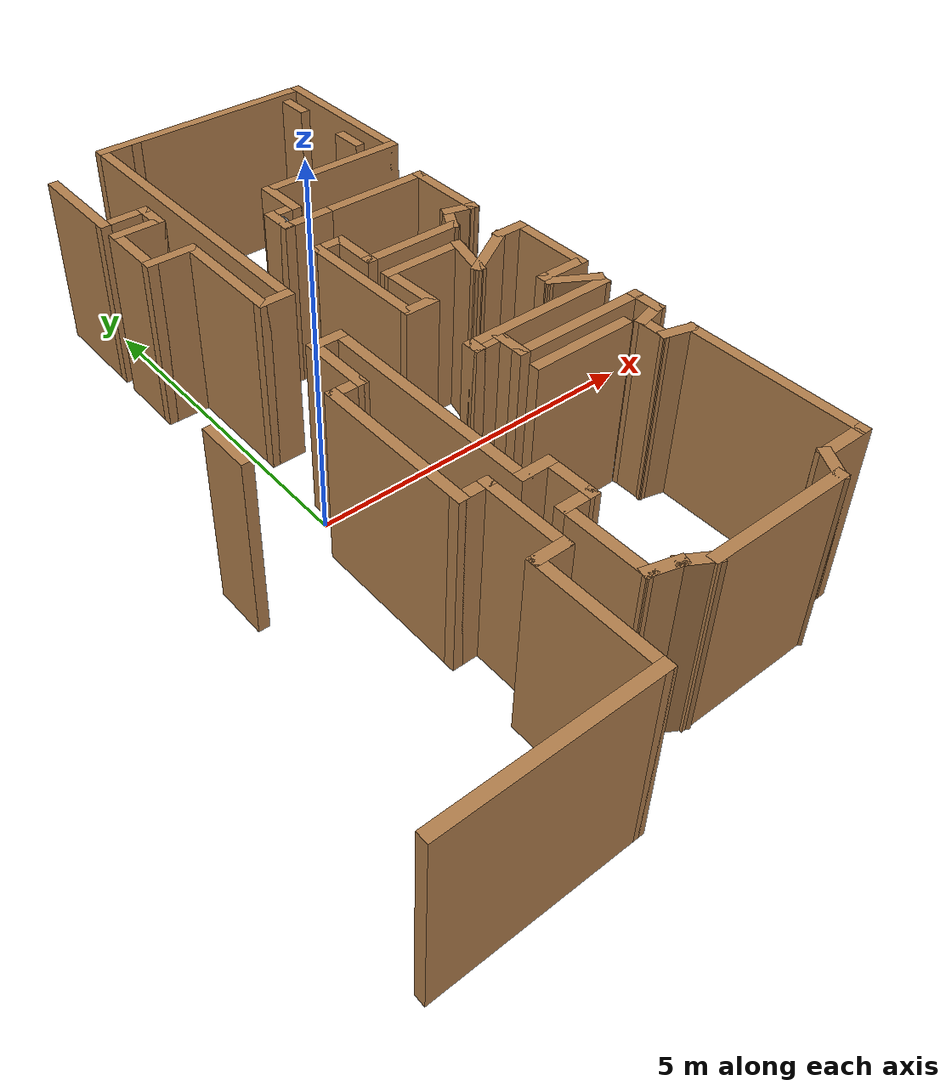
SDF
<sdf version="1.6">
 <model name="map_30">
  <pose>-2.27007 0.308618 0 0 -0 0</pose>
  <link name="Wall_100">
   <collision name="Wall_100_Collision">
    <geometry><box><size>0.25 0.15 2.5</size></box></geometry>
    <pose>0 0 1.25 0 -0 0</pose>
   </collision>
   <visual name="Wall_100_Visual">
    <pose>0 0 1.25 0 -0 0</pose>
    <geometry><box><size>0.25 0.15 2.5</size></box></geometry>
    <material>
     <script><uri>file://media/materials/scripts/gazebo.material</uri><name>Gazebo/Wood</name></script>
     <ambient>1 1 1 1</ambient>
    </material>
    <meta><layer>0</layer></meta>
   </visual>
   <pose>3.86655 -1.14749 0 0 -0 1.5708</pose>
  </link>
  <link name="Wall_101">
   <collision name="Wall_101_Collision">
    <geometry><box><size>2.25 0.15 2.5</size></box></geometry>
    <pose>0 0 1.25 0 -0 0</pose>
   </collision>
   <visual name="Wall_101_Visual">
    <pose>0 0 1.25 0 -0 0</pose>
    <geometry><box><size>2.25 0.15 2.5</size></box></geometry>
    <material>
     <script><uri>file://media/materials/scripts/gazebo.material</uri><name>Gazebo/Wood</name></script>
     <ambient>1 1 1 1</ambient>
    </material>
    <meta><layer>0</layer></meta>
   </visual>
   <pose>4.91655 -1.09749 0 0 -0 0</pose>
  </link>
  <link name="Wall_102">
   <collision name="Wall_102_Collision">
    <geometry><box><size>0.25 0.15 2.5</size></box></geometry>
    <pose>0 0 1.25 0 -0 0</pose>
   </collision>
   <visual name="Wall_102_Visual">
    <pose>0 0 1.25 0 -0 0</pose>
    <geometry><box><size>0.25 0.15 2.5</size></box></geometry>
    <material>
     <script><uri>file://media/materials/scripts/gazebo.material</uri><name>Gazebo/Wood</name></script>
     <ambient>1 1 1 1</ambient>
    </material>
    <meta><layer>0</layer></meta>
   </visual>
   <pose>5.97949 -1.04919 0 0 -0 1.309</pose>
  </link>
  <link name="Wall_103">
   <collision name="Wall_103_Collision">
    <geometry><box><size>0.75 0.15 2.5</size></box></geometry>
    <pose>0 0 1.25 0 -0 0</pose>
   </collision>
   <visual name="Wall_103_Visual">
    <pose>0 0 1.25 0 -0 0</pose>
    <geometry><box><size>0.75 0.15 2.5</size></box></geometry>
    <material>
     <script><uri>file://media/materials/scripts/gazebo.material</uri><name>Gazebo/Wood</name></script>
     <ambient>1 1 1 1</ambient>
    </material>
    <meta><layer>0</layer></meta>
   </visual>
   <pose>5.73262 -0.850895 0 0 -0 2.61799</pose>
  </link>
  <link name="Wall_104">
   <collision name="Wall_104_Collision">
    <geometry><box><size>0.25 0.15 2.5</size></box></geometry>
    <pose>0 0 1.25 0 -0 0</pose>
   </collision>
   <visual name="Wall_104_Visual">
    <pose>0 0 1.25 0 -0 0</pose>
    <geometry><box><size>0.25 0.15 2.5</size></box></geometry>
    <material>
     <script><uri>file://media/materials/scripts/gazebo.material</uri><name>Gazebo/Wood</name></script>
     <ambient>1 1 1 1</ambient>
    </material>
    <meta><layer>0</layer></meta>
   </visual>
   <pose>5.47282 -0.650895 0 0 -0 1.5708</pose>
  </link>
  <link name="Wall_105">
   <collision name="Wall_105_Collision">
    <geometry><box><size>0.75 0.15 2.5</size></box></geometry>
    <pose>0 0 1.25 0 -0 0</pose>
   </collision>
   <visual name="Wall_105_Visual">
    <pose>0 0 1.25 0 -0 0</pose>
    <geometry><box><size>0.75 0.15 2.5</size></box></geometry>
    <material>
     <script><uri>file://media/materials/scripts/gazebo.material</uri><name>Gazebo/Wood</name></script>
     <ambient>1 1 1 1</ambient>
    </material>
    <meta><layer>0</layer></meta>
   </visual>
   <pose>5.77282 -0.600895 0 0 -0 0</pose>
  </link>
  <link name="Wall_106">
   <collision name="Wall_106_Collision">
    <geometry><box><size>1.25 0.15 2.5</size></box></geometry>
    <pose>0 0 1.25 0 -0 0</pose>
   </collision>
   <visual name="Wall_106_Visual">
    <pose>0 0 1.25 0 -0 0</pose>
    <geometry><box><size>1.25 0.15 2.5</size></box></geometry>
    <material>
     <script><uri>file://media/materials/scripts/gazebo.material</uri><name>Gazebo/Wood</name></script>
     <ambient>1 1 1 1</ambient>
    </material>
    <meta><layer>0</layer></meta>
   </visual>
   <pose>6.07282 -0.050895 0 0 -0 1.5708</pose>
  </link>
  <link name="Wall_107">
   <collision name="Wall_107_Collision">
    <geometry><box><size>0.5 0.15 2.5</size></box></geometry>
    <pose>0 0 1.25 0 -0 0</pose>
   </collision>
   <visual name="Wall_107_Visual">
    <pose>0 0 1.25 0 -0 0</pose>
    <geometry><box><size>0.5 0.15 2.5</size></box></geometry>
    <material>
     <script><uri>file://media/materials/scripts/gazebo.material</uri><name>Gazebo/Wood</name></script>
     <ambient>1 1 1 1</ambient>
    </material>
    <meta><layer>0</layer></meta>
   </visual>
   <pose>5.89782 0.499105 0 0 -0 3.14159</pose>
  </link>
  <link name="Wall_108">
   <collision name="Wall_108_Collision">
    <geometry><box><size>1 0.15 2.5</size></box></geometry>
    <pose>0 0 1.25 0 -0 0</pose>
   </collision>
   <visual name="Wall_108_Visual">
    <pose>0 0 1.25 0 -0 0</pose>
    <geometry><box><size>1 0.15 2.5</size></box></geometry>
    <material>
     <script><uri>file://media/materials/scripts/gazebo.material</uri><name>Gazebo/Wood</name></script>
     <ambient>1 1 1 1</ambient>
    </material>
    <meta><layer>0</layer></meta>
   </visual>
   <pose>5.35475 0.286605 0 0 -0 -2.61799</pose>
  </link>
  <link name="Wall_109">
   <collision name="Wall_109_Collision">
    <geometry><box><size>0.75 0.15 2.5</size></box></geometry>
    <pose>0 0 1.25 0 -0 0</pose>
   </collision>
   <visual name="Wall_109_Visual">
    <pose>0 0 1.25 0 -0 0</pose>
    <geometry><box><size>0.75 0.15 2.5</size></box></geometry>
    <material>
     <script><uri>file://media/materials/scripts/gazebo.material</uri><name>Gazebo/Wood</name></script>
     <ambient>1 1 1 1</ambient>
    </material>
    <meta><layer>0</layer></meta>
   </visual>
   <pose>5.06434 0.363883 0 0 -0 1.309</pose>
  </link>
  <link name="Wall_112">
   <collision name="Wall_112_Collision">
    <geometry><box><size>1.25 0.15 2.5</size></box></geometry>
    <pose>0 0 1.25 0 -0 0</pose>
   </collision>
   <visual name="Wall_112_Visual">
    <pose>0 0 1.25 0 -0 0</pose>
    <geometry><box><size>1.25 0.15 2.5</size></box></geometry>
    <material>
     <script><uri>file://media/materials/scripts/gazebo.material</uri><name>Gazebo/Wood</name></script>
     <ambient>1 1 1 1</ambient>
    </material>
    <meta><layer>0</layer></meta>
   </visual>
   <pose>4.59199 0.653661 0 0 -0 3.14159</pose>
  </link>
  <link name="Wall_113">
   <collision name="Wall_113_Collision">
    <geometry><box><size>0.884711 0.15 2.5</size></box></geometry>
    <pose>0 0 1.25 0 -0 0</pose>
   </collision>
   <visual name="Wall_113_Visual">
    <pose>0 0 1.25 0 -0 0</pose>
    <geometry><box><size>0.884711 0.15 2.5</size></box></geometry>
    <material>
     <script><uri>file://media/materials/scripts/gazebo.material</uri><name>Gazebo/Wood</name></script>
     <ambient>1 1 1 1</ambient>
    </material>
    <meta><layer>0</layer></meta>
   </visual>
   <pose>4.05355 0.286487 0 0 -0 -1.53931</pose>
  </link>
  <link name="Wall_116">
   <collision name="Wall_116_Collision">
    <geometry><box><size>0.5 0.15 2.5</size></box></geometry>
    <pose>0 0 1.25 0 -0 0</pose>
   </collision>
   <visual name="Wall_116_Visual">
    <pose>0 0 1.25 0 -0 0</pose>
    <geometry><box><size>0.5 0.15 2.5</size></box></geometry>
    <material>
     <script><uri>file://media/materials/scripts/gazebo.material</uri><name>Gazebo/Wood</name></script>
     <ambient>1 1 1 1</ambient>
    </material>
    <meta><layer>0</layer></meta>
   </visual>
   <pose>3.89012 -0.126947 0 0 -0 3.14159</pose>
  </link>
  <link name="Wall_117">
   <collision name="Wall_117_Collision">
    <geometry><box><size>1.8845 0.15 2.5</size></box></geometry>
    <pose>0 0 1.25 0 -0 0</pose>
   </collision>
   <visual name="Wall_117_Visual">
    <pose>0 0 1.25 0 -0 0</pose>
    <geometry><box><size>1.8845 0.15 2.5</size></box></geometry>
    <material>
     <script><uri>file://media/materials/scripts/gazebo.material</uri><name>Gazebo/Wood</name></script>
     <ambient>1 1 1 1</ambient>
    </material>
    <meta><layer>0</layer></meta>
   </visual>
   <pose>3.70355 0.786487 0 0 -0 1.58413</pose>
  </link>
  <link name="Wall_118">
   <collision name="Wall_118_Collision">
    <geometry><box><size>0.5 0.15 2.5</size></box></geometry>
    <pose>0 0 1.25 0 -0 0</pose>
   </collision>
   <visual name="Wall_118_Visual">
    <pose>0 0 1.25 0 -0 0</pose>
    <geometry><box><size>0.5 0.15 2.5</size></box></geometry>
    <material>
     <script><uri>file://media/materials/scripts/gazebo.material</uri><name>Gazebo/Wood</name></script>
     <ambient>1 1 1 1</ambient>
    </material>
    <meta><layer>0</layer></meta>
   </visual>
   <pose>3.86699 1.65366 0 0 -0 0</pose>
  </link>
  <link name="Wall_121">
   <collision name="Wall_121_Collision">
    <geometry><box><size>0.75 0.15 2.5</size></box></geometry>
    <pose>0 0 1.25 0 -0 0</pose>
   </collision>
   <visual name="Wall_121_Visual">
    <pose>0 0 1.25 0 -0 0</pose>
    <geometry><box><size>0.75 0.15 2.5</size></box></geometry>
    <material>
     <script><uri>file://media/materials/scripts/gazebo.material</uri><name>Gazebo/Wood</name></script>
     <ambient>1 1 1 1</ambient>
    </material>
    <meta><layer>0</layer></meta>
   </visual>
   <pose>4.04199 1.35366 0 0 -0 -1.5708</pose>
  </link>
  <link name="Wall_122">
   <collision name="Wall_122_Collision">
    <geometry><box><size>1.5 0.15 2.5</size></box></geometry>
    <pose>0 0 1.25 0 -0 0</pose>
   </collision>
   <visual name="Wall_122_Visual">
    <pose>0 0 1.25 0 -0 0</pose>
    <geometry><box><size>1.5 0.15 2.5</size></box></geometry>
    <material>
     <script><uri>file://media/materials/scripts/gazebo.material</uri><name>Gazebo/Wood</name></script>
     <ambient>1 1 1 1</ambient>
    </material>
    <meta><layer>0</layer></meta>
   </visual>
   <pose>4.71699 1.05366 0 0 -0 0</pose>
  </link>
  <link name="Wall_123">
   <collision name="Wall_123_Collision">
    <geometry><box><size>0.5 0.15 2.5</size></box></geometry>
    <pose>0 0 1.25 0 -0 0</pose>
   </collision>
   <visual name="Wall_123_Visual">
    <pose>0 0 1.25 0 -0 0</pose>
    <geometry><box><size>0.5 0.15 2.5</size></box></geometry>
    <material>
     <script><uri>file://media/materials/scripts/gazebo.material</uri><name>Gazebo/Wood</name></script>
     <ambient>1 1 1 1</ambient>
    </material>
    <meta><layer>0</layer></meta>
   </visual>
   <pose>5.47949 1.20521 0 0 -0 1.0472</pose>
  </link>
  <link name="Wall_124">
   <collision name="Wall_124_Collision">
    <geometry><box><size>0.5 0.15 2.5</size></box></geometry>
    <pose>0 0 1.25 0 -0 0</pose>
   </collision>
   <visual name="Wall_124_Visual">
    <pose>0 0 1.25 0 -0 0</pose>
    <geometry><box><size>0.5 0.15 2.5</size></box></geometry>
    <material>
     <script><uri>file://media/materials/scripts/gazebo.material</uri><name>Gazebo/Wood</name></script>
     <ambient>1 1 1 1</ambient>
    </material>
    <meta><layer>0</layer></meta>
   </visual>
   <pose>5.73602 1.31148 0 0 -0 -0.261799</pose>
  </link>
  <link name="Wall_125">
   <collision name="Wall_125_Collision">
    <geometry><box><size>1.25 0.15 2.5</size></box></geometry>
    <pose>0 0 1.25 0 -0 0</pose>
   </collision>
   <visual name="Wall_125_Visual">
    <pose>0 0 1.25 0 -0 0</pose>
    <geometry><box><size>1.25 0.15 2.5</size></box></geometry>
    <material>
     <script><uri>file://media/materials/scripts/gazebo.material</uri><name>Gazebo/Wood</name></script>
     <ambient>1 1 1 1</ambient>
    </material>
    <meta><layer>0</layer></meta>
   </visual>
   <pose>5.90506 1.81618 0 0 -0 1.5708</pose>
  </link>
  <link name="Wall_126">
   <collision name="Wall_126_Collision">
    <geometry><box><size>1.75 0.15 2.5</size></box></geometry>
    <pose>0 0 1.25 0 -0 0</pose>
   </collision>
   <visual name="Wall_126_Visual">
    <pose>0 0 1.25 0 -0 0</pose>
    <geometry><box><size>1.75 0.15 2.5</size></box></geometry>
    <material>
     <script><uri>file://media/materials/scripts/gazebo.material</uri><name>Gazebo/Wood</name></script>
     <ambient>1 1 1 1</ambient>
    </material>
    <meta><layer>0</layer></meta>
   </visual>
   <pose>5.10506 2.36618 0 0 -0 3.14159</pose>
  </link>
  <link name="Wall_128">
   <collision name="Wall_128_Collision">
    <geometry><box><size>0.15 0.15 2.5</size></box></geometry>
    <pose>0 0 1.25 0 -0 0</pose>
   </collision>
   <visual name="Wall_128_Visual">
    <pose>0 0 1.25 0 -0 0</pose>
    <geometry><box><size>0.15 0.15 2.5</size></box></geometry>
    <material>
     <script><uri>file://media/materials/scripts/gazebo.material</uri><name>Gazebo/Grey</name></script>
     <ambient>1 1 1 1</ambient>
    </material>
    <meta><layer>0</layer></meta>
   </visual>
   <pose>3.7255 2.52147 0 0 -0 0</pose>
  </link>
  <link name="Wall_130">
   <collision name="Wall_130_Collision">
    <geometry><box><size>0.75 0.15 2.5</size></box></geometry>
    <pose>0 0 1.25 0 -0 0</pose>
   </collision>
   <visual name="Wall_130_Visual">
    <pose>0 0 1.25 0 -0 0</pose>
    <geometry><box><size>0.75 0.15 2.5</size></box></geometry>
    <material>
     <script><uri>file://media/materials/scripts/gazebo.material</uri><name>Gazebo/Wood</name></script>
     <ambient>1 1 1 1</ambient>
    </material>
    <meta><layer>0</layer></meta>
   </visual>
   <pose>4.00506 2.36618 0 0 -0 3.14159</pose>
  </link>
  <link name="Wall_131">
   <collision name="Wall_131_Collision">
    <geometry><box><size>0.5 0.15 2.5</size></box></geometry>
    <pose>0 0 1.25 0 -0 0</pose>
   </collision>
   <visual name="Wall_131_Visual">
    <pose>0 0 1.25 0 -0 0</pose>
    <geometry><box><size>0.5 0.15 2.5</size></box></geometry>
    <material>
     <script><uri>file://media/materials/scripts/gazebo.material</uri><name>Gazebo/Wood</name></script>
     <ambient>1 1 1 1</ambient>
    </material>
    <meta><layer>0</layer></meta>
   </visual>
   <pose>3.70506 2.54118 0 0 -0 1.5708</pose>
  </link>
  <link name="Wall_132">
   <collision name="Wall_132_Collision">
    <geometry><box><size>0.5 0.15 2.5</size></box></geometry>
    <pose>0 0 1.25 0 -0 0</pose>
   </collision>
   <visual name="Wall_132_Visual">
    <pose>0 0 1.25 0 -0 0</pose>
    <geometry><box><size>0.5 0.15 2.5</size></box></geometry>
    <material>
     <script><uri>file://media/materials/scripts/gazebo.material</uri><name>Gazebo/Wood</name></script>
     <ambient>1 1 1 1</ambient>
    </material>
    <meta><layer>0</layer></meta>
   </visual>
   <pose>3.88006 2.71618 0 0 -0 0</pose>
  </link>
  <link name="Wall_133">
   <collision name="Wall_133_Collision">
    <geometry><box><size>0.75 0.15 2.5</size></box></geometry>
    <pose>0 0 1.25 0 -0 0</pose>
   </collision>
   <visual name="Wall_133_Visual">
    <pose>0 0 1.25 0 -0 0</pose>
    <geometry><box><size>0.75 0.15 2.5</size></box></geometry>
    <material>
     <script><uri>file://media/materials/scripts/gazebo.material</uri><name>Gazebo/Wood</name></script>
     <ambient>1 1 1 1</ambient>
    </material>
    <meta><layer>0</layer></meta>
   </visual>
   <pose>4.05506 3.01618 0 0 -0 1.5708</pose>
  </link>
  <link name="Wall_134">
   <collision name="Wall_134_Collision">
    <geometry><box><size>2.25 0.15 2.5</size></box></geometry>
    <pose>0 0 1.25 0 -0 0</pose>
   </collision>
   <visual name="Wall_134_Visual">
    <pose>0 0 1.25 0 -0 0</pose>
    <geometry><box><size>2.25 0.15 2.5</size></box></geometry>
    <material>
     <script><uri>file://media/materials/scripts/gazebo.material</uri><name>Gazebo/Wood</name></script>
     <ambient>1 1 1 1</ambient>
    </material>
    <meta><layer>0</layer></meta>
   </visual>
   <pose>5.10506 3.31618 0 0 -0 0</pose>
  </link>
  <link name="Wall_135">
   <collision name="Wall_135_Collision">
    <geometry><box><size>2.5 0.15 2.5</size></box></geometry>
    <pose>0 0 1.25 0 -0 0</pose>
   </collision>
   <visual name="Wall_135_Visual">
    <pose>0 0 1.25 0 -0 0</pose>
    <geometry><box><size>2.5 0.15 2.5</size></box></geometry>
    <material>
     <script><uri>file://media/materials/scripts/gazebo.material</uri><name>Gazebo/Wood</name></script>
     <ambient>1 1 1 1</ambient>
    </material>
    <meta><layer>0</layer></meta>
   </visual>
   <pose>6.15506 4.49118 0 0 -0 1.5708</pose>
  </link>
  <link name="Wall_137">
   <collision name="Wall_137_Collision">
    <geometry><box><size>0.15 0.15 2.5</size></box></geometry>
    <pose>0 0 1.25 0 -0 0</pose>
   </collision>
   <visual name="Wall_137_Visual">
    <pose>0 0 1.25 0 -0 0</pose>
    <geometry><box><size>0.15 0.15 2.5</size></box></geometry>
    <material>
     <script><uri>file://media/materials/scripts/gazebo.material</uri><name>Gazebo/Wood</name></script>
     <ambient>1 1 1 1</ambient>
    </material>
    <meta><layer>0</layer></meta>
   </visual>
   <pose>3.30506 5.66618 0 0 -0 0</pose>
  </link>
  <link name="Wall_143">
   <collision name="Wall_143_Collision">
    <geometry><box><size>3.5 0.15 2.5</size></box></geometry>
    <pose>0 0 1.25 0 -0 0</pose>
   </collision>
   <visual name="Wall_143_Visual">
    <pose>0 0 1.25 0 -0 0</pose>
    <geometry><box><size>3.5 0.15 2.5</size></box></geometry>
    <material>
     <script><uri>file://media/materials/scripts/gazebo.material</uri><name>Gazebo/Wood</name></script>
     <ambient>1 1 1 1</ambient>
    </material>
    <meta><layer>0</layer></meta>
   </visual>
   <pose>4.48006 5.66618 0 0 -0 3.14159</pose>
  </link>
  <link name="Wall_144">
   <collision name="Wall_144_Collision">
    <geometry><box><size>4.75 0.15 2.5</size></box></geometry>
    <pose>0 0 1.25 0 -0 0</pose>
   </collision>
   <visual name="Wall_144_Visual">
    <pose>0 0 1.25 0 -0 0</pose>
    <geometry><box><size>4.75 0.15 2.5</size></box></geometry>
    <material>
     <script><uri>file://media/materials/scripts/gazebo.material</uri><name>Gazebo/Wood</name></script>
     <ambient>1 1 1 1</ambient>
    </material>
    <meta><layer>0</layer></meta>
   </visual>
   <pose>2.80506 3.36618 0 0 -0 -1.5708</pose>
  </link>
  <link name="Wall_145">
   <collision name="Wall_145_Collision">
    <geometry><box><size>0.5 0.15 2.5</size></box></geometry>
    <pose>0 0 1.25 0 -0 0</pose>
   </collision>
   <visual name="Wall_145_Visual">
    <pose>0 0 1.25 0 -0 0</pose>
    <geometry><box><size>0.5 0.15 2.5</size></box></geometry>
    <material>
     <script><uri>file://media/materials/scripts/gazebo.material</uri><name>Gazebo/Wood</name></script>
     <ambient>1 1 1 1</ambient>
    </material>
    <meta><layer>0</layer></meta>
   </visual>
   <pose>2.63006 1.06618 0 0 -0 3.14159</pose>
  </link>
  <link name="Wall_146">
   <collision name="Wall_146_Collision">
    <geometry><box><size>1.75 0.15 2.5</size></box></geometry>
    <pose>0 0 1.25 0 -0 0</pose>
   </collision>
   <visual name="Wall_146_Visual">
    <pose>0 0 1.25 0 -0 0</pose>
    <geometry><box><size>1.75 0.15 2.5</size></box></geometry>
    <material>
     <script><uri>file://media/materials/scripts/gazebo.material</uri><name>Gazebo/Wood</name></script>
     <ambient>1 1 1 1</ambient>
    </material>
    <meta><layer>0</layer></meta>
   </visual>
   <pose>2.45506 1.86618 0 0 -0 1.5708</pose>
  </link>
  <link name="Wall_147">
   <collision name="Wall_147_Collision">
    <geometry><box><size>0.75 0.15 2.5</size></box></geometry>
    <pose>0 0 1.25 0 -0 0</pose>
   </collision>
   <visual name="Wall_147_Visual">
    <pose>0 0 1.25 0 -0 0</pose>
    <geometry><box><size>0.75 0.15 2.5</size></box></geometry>
    <material>
     <script><uri>file://media/materials/scripts/gazebo.material</uri><name>Gazebo/Wood</name></script>
     <ambient>1 1 1 1</ambient>
    </material>
    <meta><layer>0</layer></meta>
   </visual>
   <pose>2.15506 2.66618 0 0 -0 3.14159</pose>
  </link>
  <link name="Wall_148">
   <collision name="Wall_148_Collision">
    <geometry><box><size>1 0.15 2.5</size></box></geometry>
    <pose>0 0 1.25 0 -0 0</pose>
   </collision>
   <visual name="Wall_148_Visual">
    <pose>0 0 1.25 0 -0 0</pose>
    <geometry><box><size>1 0.15 2.5</size></box></geometry>
    <material>
     <script><uri>file://media/materials/scripts/gazebo.material</uri><name>Gazebo/Wood</name></script>
     <ambient>1 1 1 1</ambient>
    </material>
    <meta><layer>0</layer></meta>
   </visual>
   <pose>1.85506 3.09118 0 0 -0 1.5708</pose>
  </link>
  <link name="Wall_149">
   <collision name="Wall_149_Collision">
    <geometry><box><size>0.75 0.15 2.5</size></box></geometry>
    <pose>0 0 1.25 0 -0 0</pose>
   </collision>
   <visual name="Wall_149_Visual">
    <pose>0 0 1.25 0 -0 0</pose>
    <geometry><box><size>0.75 0.15 2.5</size></box></geometry>
    <material>
     <script><uri>file://media/materials/scripts/gazebo.material</uri><name>Gazebo/Wood</name></script>
     <ambient>1 1 1 1</ambient>
    </material>
    <meta><layer>0</layer></meta>
   </visual>
   <pose>2.15506 3.51618 0 0 -0 0</pose>
  </link>
  <link name="Wall_150">
   <collision name="Wall_150_Collision">
    <geometry><box><size>0.5 0.15 2.5</size></box></geometry>
    <pose>0 0 1.25 0 -0 0</pose>
   </collision>
   <visual name="Wall_150_Visual">
    <pose>0 0 1.25 0 -0 0</pose>
    <geometry><box><size>0.5 0.15 2.5</size></box></geometry>
    <material>
     <script><uri>file://media/materials/scripts/gazebo.material</uri><name>Gazebo/Wood</name></script>
     <ambient>1 1 1 1</ambient>
    </material>
    <meta><layer>0</layer></meta>
   </visual>
   <pose>2.45506 3.69118 0 0 -0 1.5708</pose>
  </link>
  <link name="Wall_151">
   <collision name="Wall_151_Collision">
    <geometry><box><size>0.75 0.15 2.5</size></box></geometry>
    <pose>0 0 1.25 0 -0 0</pose>
   </collision>
   <visual name="Wall_151_Visual">
    <pose>0 0 1.25 0 -0 0</pose>
    <geometry><box><size>0.75 0.15 2.5</size></box></geometry>
    <material>
     <script><uri>file://media/materials/scripts/gazebo.material</uri><name>Gazebo/Wood</name></script>
     <ambient>1 1 1 1</ambient>
    </material>
    <meta><layer>0</layer></meta>
   </visual>
   <pose>2.15506 3.86618 0 0 -0 3.14159</pose>
  </link>
  <link name="Wall_152">
   <collision name="Wall_152_Collision">
    <geometry><box><size>1.5 0.15 2.5</size></box></geometry>
    <pose>0 0 1.25 0 -0 0</pose>
   </collision>
   <visual name="Wall_152_Visual">
    <pose>0 0 1.25 0 -0 0</pose>
    <geometry><box><size>1.5 0.15 2.5</size></box></geometry>
    <material>
     <script><uri>file://media/materials/scripts/gazebo.material</uri><name>Gazebo/Wood</name></script>
     <ambient>1 1 1 1</ambient>
    </material>
    <meta><layer>0</layer></meta>
   </visual>
   <pose>1.85506 4.54118 0 0 -0 1.5708</pose>
  </link>
  <link name="Wall_197">
   <collision name="Wall_197_Collision">
    <geometry><box><size>0.75 0.15 2.5</size></box></geometry>
    <pose>0 0 1.25 0 -0 0</pose>
   </collision>
   <visual name="Wall_197_Visual">
    <pose>0 0 1.25 0 -0 0</pose>
    <geometry><box><size>0.75 0.15 2.5</size></box></geometry>
    <material>
     <script><uri>file://media/materials/scripts/gazebo.material</uri><name>Gazebo/Wood</name></script>
     <ambient>1 1 1 1</ambient>
    </material>
    <meta><layer>0</layer></meta>
   </visual>
   <pose>0.747406 -0.869697 0 0 -0 1.5708</pose>
  </link>
  <link name="Wall_200">
   <collision name="Wall_200_Collision">
    <geometry><box><size>1.5 0.15 2.5</size></box></geometry>
    <pose>0 0 1.25 0 -0 0</pose>
   </collision>
   <visual name="Wall_200_Visual">
    <pose>0 0 1.25 0 -0 0</pose>
    <geometry><box><size>1.5 0.15 2.5</size></box></geometry>
    <material>
     <script><uri>file://media/materials/scripts/gazebo.material</uri><name>Gazebo/Wood</name></script>
     <ambient>1 1 1 1</ambient>
    </material>
    <meta><layer>0</layer></meta>
   </visual>
   <pose>4.86583 -1.86501 0 0 -0 0</pose>
  </link>
  <link name="Wall_202">
   <collision name="Wall_202_Collision">
    <geometry><box><size>0.5 0.15 2.5</size></box></geometry>
    <pose>0 0 1.25 0 -0 0</pose>
   </collision>
   <visual name="Wall_202_Visual">
    <pose>0 0 1.25 0 -0 0</pose>
    <geometry><box><size>0.5 0.15 2.5</size></box></geometry>
    <material>
     <script><uri>file://media/materials/scripts/gazebo.material</uri><name>Gazebo/Wood</name></script>
     <ambient>1 1 1 1</ambient>
    </material>
    <meta><layer>0</layer></meta>
   </visual>
   <pose>5.78684 5.17674 0 0 -0 -1.5708</pose>
  </link>
  <link name="Wall_204">
   <collision name="Wall_204_Collision">
    <geometry><box><size>0.5 0.15 2.5</size></box></geometry>
    <pose>0 0 1.25 0 -0 0</pose>
   </collision>
   <visual name="Wall_204_Visual">
    <pose>0 0 1.25 0 -0 0</pose>
    <geometry><box><size>0.5 0.15 2.5</size></box></geometry>
    <material>
     <script><uri>file://media/materials/scripts/gazebo.material</uri><name>Gazebo/Wood</name></script>
     <ambient>1 1 1 1</ambient>
    </material>
    <meta><layer>0</layer></meta>
   </visual>
   <pose>5.78684 3.81203 0 0 -0 -1.5708</pose>
  </link>
  <link name="Wall_67">
   <collision name="Wall_67_Collision">
    <geometry><box><size>2.75 0.15 2.5</size></box></geometry>
    <pose>0 0 1.25 0 -0 0</pose>
   </collision>
   <visual name="Wall_67_Visual">
    <pose>0 0 1.25 0 -0 0</pose>
    <geometry><box><size>2.75 0.15 2.5</size></box></geometry>
    <material>
     <script><uri>file://media/materials/scripts/gazebo.material</uri><name>Gazebo/Wood</name></script>
     <ambient>1 1 1 1</ambient>
    </material>
    <meta><layer>0</layer></meta>
   </visual>
   <pose>0.800366 -5.66618 0 0 -0 0</pose>
  </link>
  <link name="Wall_68">
   <collision name="Wall_68_Collision">
    <geometry><box><size>1.75 0.15 2.5</size></box></geometry>
    <pose>0 0 1.25 0 -0 0</pose>
   </collision>
   <visual name="Wall_68_Visual">
    <pose>0 0 1.25 0 -0 0</pose>
    <geometry><box><size>1.75 0.15 2.5</size></box></geometry>
    <material>
     <script><uri>file://media/materials/scripts/gazebo.material</uri><name>Gazebo/Wood</name></script>
     <ambient>1 1 1 1</ambient>
    </material>
    <meta><layer>0</layer></meta>
   </visual>
   <pose>2.10037 -4.86618 0 0 -0 1.5708</pose>
  </link>
  <link name="Wall_69">
   <collision name="Wall_69_Collision">
    <geometry><box><size>0.5 0.15 2.5</size></box></geometry>
    <pose>0 0 1.25 0 -0 0</pose>
   </collision>
   <visual name="Wall_69_Visual">
    <pose>0 0 1.25 0 -0 0</pose>
    <geometry><box><size>0.5 0.15 2.5</size></box></geometry>
    <material>
     <script><uri>file://media/materials/scripts/gazebo.material</uri><name>Gazebo/Wood</name></script>
     <ambient>1 1 1 1</ambient>
    </material>
    <meta><layer>0</layer></meta>
   </visual>
   <pose>2.27537 -4.06618 0 0 -0 0</pose>
  </link>
  <link name="Wall_70">
   <collision name="Wall_70_Collision">
    <geometry><box><size>1.25 0.15 2.5</size></box></geometry>
    <pose>0 0 1.25 0 -0 0</pose>
   </collision>
   <visual name="Wall_70_Visual">
    <pose>0 0 1.25 0 -0 0</pose>
    <geometry><box><size>1.25 0.15 2.5</size></box></geometry>
    <material>
     <script><uri>file://media/materials/scripts/gazebo.material</uri><name>Gazebo/Wood</name></script>
     <ambient>1 1 1 1</ambient>
    </material>
    <meta><layer>0</layer></meta>
   </visual>
   <pose>2.45037 -3.51618 0 0 -0 1.5708</pose>
  </link>
  <link name="Wall_71">
   <collision name="Wall_71_Collision">
    <geometry><box><size>0.5 0.15 2.5</size></box></geometry>
    <pose>0 0 1.25 0 -0 0</pose>
   </collision>
   <visual name="Wall_71_Visual">
    <pose>0 0 1.25 0 -0 0</pose>
    <geometry><box><size>0.5 0.15 2.5</size></box></geometry>
    <material>
     <script><uri>file://media/materials/scripts/gazebo.material</uri><name>Gazebo/Wood</name></script>
     <ambient>1 1 1 1</ambient>
    </material>
    <meta><layer>0</layer></meta>
   </visual>
   <pose>2.27537 -2.96618 0 0 -0 3.14159</pose>
  </link>
  <link name="Wall_72">
   <collision name="Wall_72_Collision">
    <geometry><box><size>2.25 0.15 2.5</size></box></geometry>
    <pose>0 0 1.25 0 -0 0</pose>
   </collision>
   <visual name="Wall_72_Visual">
    <pose>0 0 1.25 0 -0 0</pose>
    <geometry><box><size>2.25 0.15 2.5</size></box></geometry>
    <material>
     <script><uri>file://media/materials/scripts/gazebo.material</uri><name>Gazebo/Wood</name></script>
     <ambient>1 1 1 1</ambient>
    </material>
    <meta><layer>0</layer></meta>
   </visual>
   <pose>2.10037 -1.91618 0 0 -0 1.5708</pose>
  </link>
  <link name="Wall_73">
   <collision name="Wall_73_Collision">
    <geometry><box><size>0.5 0.15 2.5</size></box></geometry>
    <pose>0 0 1.25 0 -0 0</pose>
   </collision>
   <visual name="Wall_73_Visual">
    <pose>0 0 1.25 0 -0 0</pose>
    <geometry><box><size>0.5 0.15 2.5</size></box></geometry>
    <material>
     <script><uri>file://media/materials/scripts/gazebo.material</uri><name>Gazebo/Wood</name></script>
     <ambient>1 1 1 1</ambient>
    </material>
    <meta><layer>0</layer></meta>
   </visual>
   <pose>2.27537 -0.866183 0 0 -0 0</pose>
  </link>
  <link name="Wall_74">
   <collision name="Wall_74_Collision">
    <geometry><box><size>1 0.15 2.5</size></box></geometry>
    <pose>0 0 1.25 0 -0 0</pose>
   </collision>
   <visual name="Wall_74_Visual">
    <pose>0 0 1.25 0 -0 0</pose>
    <geometry><box><size>1 0.15 2.5</size></box></geometry>
    <material>
     <script><uri>file://media/materials/scripts/gazebo.material</uri><name>Gazebo/Wood</name></script>
     <ambient>1 1 1 1</ambient>
    </material>
    <meta><layer>0</layer></meta>
   </visual>
   <pose>2.45037 -0.441183 0 0 -0 1.5708</pose>
  </link>
  <link name="Wall_75">
   <collision name="Wall_75_Collision">
    <geometry><box><size>0.5 0.15 2.5</size></box></geometry>
    <pose>0 0 1.25 0 -0 0</pose>
   </collision>
   <visual name="Wall_75_Visual">
    <pose>0 0 1.25 0 -0 0</pose>
    <geometry><box><size>0.5 0.15 2.5</size></box></geometry>
    <material>
     <script><uri>file://media/materials/scripts/gazebo.material</uri><name>Gazebo/Wood</name></script>
     <ambient>1 1 1 1</ambient>
    </material>
    <meta><layer>0</layer></meta>
   </visual>
   <pose>2.62537 -0.016183 0 0 -0 0</pose>
  </link>
  <link name="Wall_76">
   <collision name="Wall_76_Collision">
    <geometry><box><size>3.25 0.15 2.5</size></box></geometry>
    <pose>0 0 1.25 0 -0 0</pose>
   </collision>
   <visual name="Wall_76_Visual">
    <pose>0 0 1.25 0 -0 0</pose>
    <geometry><box><size>3.25 0.15 2.5</size></box></geometry>
    <material>
     <script><uri>file://media/materials/scripts/gazebo.material</uri><name>Gazebo/Wood</name></script>
     <ambient>1 1 1 1</ambient>
    </material>
    <meta><layer>0</layer></meta>
   </visual>
   <pose>2.80037 -1.56618 0 0 -0 -1.5708</pose>
  </link>
  <link name="Wall_77">
   <collision name="Wall_77_Collision">
    <geometry><box><size>0.5 0.15 2.5</size></box></geometry>
    <pose>0 0 1.25 0 -0 0</pose>
   </collision>
   <visual name="Wall_77_Visual">
    <pose>0 0 1.25 0 -0 0</pose>
    <geometry><box><size>0.5 0.15 2.5</size></box></geometry>
    <material>
     <script><uri>file://media/materials/scripts/gazebo.material</uri><name>Gazebo/Wood</name></script>
     <ambient>1 1 1 1</ambient>
    </material>
    <meta><layer>0</layer></meta>
   </visual>
   <pose>2.97537 -3.11618 0 0 -0 0</pose>
  </link>
  <link name="Wall_84">
   <collision name="Wall_84_Collision">
    <geometry><box><size>0.75 0.15 2.5</size></box></geometry>
    <pose>0 0 1.25 0 -0 0</pose>
   </collision>
   <visual name="Wall_84_Visual">
    <pose>0 0 1.25 0 -0 0</pose>
    <geometry><box><size>0.75 0.15 2.5</size></box></geometry>
    <material>
     <script><uri>file://media/materials/scripts/gazebo.material</uri><name>Gazebo/Wood</name></script>
     <ambient>1 1 1 1</ambient>
    </material>
    <meta><layer>0</layer></meta>
   </visual>
   <pose>3.15037 -3.41618 0 0 -0 -1.5708</pose>
  </link>
  <link name="Wall_85">
   <collision name="Wall_85_Collision">
    <geometry><box><size>0.5 0.15 2.5</size></box></geometry>
    <pose>0 0 1.25 0 -0 0</pose>
   </collision>
   <visual name="Wall_85_Visual">
    <pose>0 0 1.25 0 -0 0</pose>
    <geometry><box><size>0.5 0.15 2.5</size></box></geometry>
    <material>
     <script><uri>file://media/materials/scripts/gazebo.material</uri><name>Gazebo/Wood</name></script>
     <ambient>1 1 1 1</ambient>
    </material>
    <meta><layer>0</layer></meta>
   </visual>
   <pose>2.97537 -3.71618 0 0 -0 3.14159</pose>
  </link>
  <link name="Wall_86">
   <collision name="Wall_86_Collision">
    <geometry><box><size>1.25 0.15 2.5</size></box></geometry>
    <pose>0 0 1.25 0 -0 0</pose>
   </collision>
   <visual name="Wall_86_Visual">
    <pose>0 0 1.25 0 -0 0</pose>
    <geometry><box><size>1.25 0.15 2.5</size></box></geometry>
    <material>
     <script><uri>file://media/materials/scripts/gazebo.material</uri><name>Gazebo/Wood</name></script>
     <ambient>1 1 1 1</ambient>
    </material>
    <meta><layer>0</layer></meta>
   </visual>
   <pose>2.80037 -4.26618 0 0 -0 -1.5708</pose>
  </link>
  <link name="Wall_87">
   <collision name="Wall_87_Collision">
    <geometry><box><size>0.5 0.15 2.5</size></box></geometry>
    <pose>0 0 1.25 0 -0 0</pose>
   </collision>
   <visual name="Wall_87_Visual">
    <pose>0 0 1.25 0 -0 0</pose>
    <geometry><box><size>0.5 0.15 2.5</size></box></geometry>
    <material>
     <script><uri>file://media/materials/scripts/gazebo.material</uri><name>Gazebo/Wood</name></script>
     <ambient>1 1 1 1</ambient>
    </material>
    <meta><layer>0</layer></meta>
   </visual>
   <pose>2.9694 -4.86148 0 0 -0 -0.261799</pose>
  </link>
  <link name="Wall_88">
   <collision name="Wall_88_Collision">
    <geometry><box><size>0.5 0.15 2.5</size></box></geometry>
    <pose>0 0 1.25 0 -0 0</pose>
   </collision>
   <visual name="Wall_88_Visual">
    <pose>0 0 1.25 0 -0 0</pose>
    <geometry><box><size>0.5 0.15 2.5</size></box></geometry>
    <material>
     <script><uri>file://media/materials/scripts/gazebo.material</uri><name>Gazebo/Wood</name></script>
     <ambient>1 1 1 1</ambient>
    </material>
    <meta><layer>0</layer></meta>
   </visual>
   <pose>3.28999 -4.99427 0 0 -0 -0.523599</pose>
  </link>
  <link name="Wall_89">
   <collision name="Wall_89_Collision">
    <geometry><box><size>2 0.15 2.5</size></box></geometry>
    <pose>0 0 1.25 0 -0 0</pose>
   </collision>
   <visual name="Wall_89_Visual">
    <pose>0 0 1.25 0 -0 0</pose>
    <geometry><box><size>2 0.15 2.5</size></box></geometry>
    <material>
     <script><uri>file://media/materials/scripts/gazebo.material</uri><name>Gazebo/Wood</name></script>
     <ambient>1 1 1 1</ambient>
    </material>
    <meta><layer>0</layer></meta>
   </visual>
   <pose>4.36655 -5.08177 0 0 -0 0</pose>
  </link>
  <link name="Wall_90">
   <collision name="Wall_90_Collision">
    <geometry><box><size>0.5 0.15 2.5</size></box></geometry>
    <pose>0 0 1.25 0 -0 0</pose>
   </collision>
   <visual name="Wall_90_Visual">
    <pose>0 0 1.25 0 -0 0</pose>
    <geometry><box><size>0.5 0.15 2.5</size></box></geometry>
    <material>
     <script><uri>file://media/materials/scripts/gazebo.material</uri><name>Gazebo/Wood</name></script>
     <ambient>1 1 1 1</ambient>
    </material>
    <meta><layer>0</layer></meta>
   </visual>
   <pose>5.37905 -4.93021 0 0 -0 1.0472</pose>
  </link>
  <link name="Wall_91">
   <collision name="Wall_91_Collision">
    <geometry><box><size>0.75 0.15 2.5</size></box></geometry>
    <pose>0 0 1.25 0 -0 0</pose>
   </collision>
   <visual name="Wall_91_Visual">
    <pose>0 0 1.25 0 -0 0</pose>
    <geometry><box><size>0.75 0.15 2.5</size></box></geometry>
    <material>
     <script><uri>file://media/materials/scripts/gazebo.material</uri><name>Gazebo/Wood</name></script>
     <ambient>1 1 1 1</ambient>
    </material>
    <meta><layer>0</layer></meta>
   </visual>
   <pose>5.76655 -4.77866 0 0 -0 0</pose>
  </link>
  <link name="Wall_92">
   <collision name="Wall_92_Collision">
    <geometry><box><size>2.5 0.15 2.5</size></box></geometry>
    <pose>0 0 1.25 0 -0 0</pose>
   </collision>
   <visual name="Wall_92_Visual">
    <pose>0 0 1.25 0 -0 0</pose>
    <geometry><box><size>2.5 0.15 2.5</size></box></geometry>
    <material>
     <script><uri>file://media/materials/scripts/gazebo.material</uri><name>Gazebo/Wood</name></script>
     <ambient>1 1 1 1</ambient>
    </material>
    <meta><layer>0</layer></meta>
   </visual>
   <pose>6.06655 -3.60366 0 0 -0 1.5708</pose>
  </link>
  <link name="Wall_93">
   <collision name="Wall_93_Collision">
    <geometry><box><size>0.5 0.15 2.5</size></box></geometry>
    <pose>0 0 1.25 0 -0 0</pose>
   </collision>
   <visual name="Wall_93_Visual">
    <pose>0 0 1.25 0 -0 0</pose>
    <geometry><box><size>0.5 0.15 2.5</size></box></geometry>
    <material>
     <script><uri>file://media/materials/scripts/gazebo.material</uri><name>Gazebo/Wood</name></script>
     <ambient>1 1 1 1</ambient>
    </material>
    <meta><layer>0</layer></meta>
   </visual>
   <pose>5.89751 -2.38337 0 0 -0 2.87979</pose>
  </link>
  <link name="Wall_94">
   <collision name="Wall_94_Collision">
    <geometry><box><size>0.5 0.15 2.5</size></box></geometry>
    <pose>0 0 1.25 0 -0 0</pose>
   </collision>
   <visual name="Wall_94_Visual">
    <pose>0 0 1.25 0 -0 0</pose>
    <geometry><box><size>0.5 0.15 2.5</size></box></geometry>
    <material>
     <script><uri>file://media/materials/scripts/gazebo.material</uri><name>Gazebo/Wood</name></script>
     <ambient>1 1 1 1</ambient>
    </material>
    <meta><layer>0</layer></meta>
   </visual>
   <pose>5.72848 -2.16307 0 0 -0 1.5708</pose>
  </link>
  <link name="Wall_95">
   <collision name="Wall_95_Collision">
    <geometry><box><size>0.5 0.15 2.5</size></box></geometry>
    <pose>0 0 1.25 0 -0 0</pose>
   </collision>
   <visual name="Wall_95_Visual">
    <pose>0 0 1.25 0 -0 0</pose>
    <geometry><box><size>0.5 0.15 2.5</size></box></geometry>
    <material>
     <script><uri>file://media/materials/scripts/gazebo.material</uri><name>Gazebo/Wood</name></script>
     <ambient>1 1 1 1</ambient>
    </material>
    <meta><layer>0</layer></meta>
   </visual>
   <pose>5.89751 -1.94278 0 0 -0 0.261799</pose>
  </link>
  <link name="Wall_96">
   <collision name="Wall_96_Collision">
    <geometry><box><size>0.5 0.15 2.5</size></box></geometry>
    <pose>0 0 1.25 0 -0 0</pose>
   </collision>
   <visual name="Wall_96_Visual">
    <pose>0 0 1.25 0 -0 0</pose>
    <geometry><box><size>0.5 0.15 2.5</size></box></geometry>
    <material>
     <script><uri>file://media/materials/scripts/gazebo.material</uri><name>Gazebo/Wood</name></script>
     <ambient>1 1 1 1</ambient>
    </material>
    <meta><layer>0</layer></meta>
   </visual>
   <pose>6.06655 -1.72249 0 0 -0 1.5708</pose>
  </link>
  <link name="Wall_97">
   <collision name="Wall_97_Collision">
    <geometry><box><size>2 0.15 2.5</size></box></geometry>
    <pose>0 0 1.25 0 -0 0</pose>
   </collision>
   <visual name="Wall_97_Visual">
    <pose>0 0 1.25 0 -0 0</pose>
    <geometry><box><size>2 0.15 2.5</size></box></geometry>
    <material>
     <script><uri>file://media/materials/scripts/gazebo.material</uri><name>Gazebo/Wood</name></script>
     <ambient>1 1 1 1</ambient>
    </material>
    <meta><layer>0</layer></meta>
   </visual>
   <pose>5.14155 -1.54749 0 0 -0 3.14159</pose>
  </link>
  <link name="Wall_98">
   <collision name="Wall_98_Collision">
    <geometry><box><size>0.5 0.15 2.5</size></box></geometry>
    <pose>0 0 1.25 0 -0 0</pose>
   </collision>
   <visual name="Wall_98_Visual">
    <pose>0 0 1.25 0 -0 0</pose>
    <geometry><box><size>0.5 0.15 2.5</size></box></geometry>
    <material>
     <script><uri>file://media/materials/scripts/gazebo.material</uri><name>Gazebo/Wood</name></script>
     <ambient>1 1 1 1</ambient>
    </material>
    <meta><layer>0</layer></meta>
   </visual>
   <pose>4.21655 -1.37249 0 0 -0 1.5708</pose>
  </link>
  <link name="Wall_99">
   <collision name="Wall_99_Collision">
    <geometry><box><size>0.5 0.15 2.5</size></box></geometry>
    <pose>0 0 1.25 0 -0 0</pose>
   </collision>
   <visual name="Wall_99_Visual">
    <pose>0 0 1.25 0 -0 0</pose>
    <geometry><box><size>0.5 0.15 2.5</size></box></geometry>
    <material>
     <script><uri>file://media/materials/scripts/gazebo.material</uri><name>Gazebo/Wood</name></script>
     <ambient>1 1 1 1</ambient>
    </material>
    <meta><layer>0</layer></meta>
   </visual>
   <pose>4.04155 -1.19749 0 0 -0 3.14159</pose>
  </link>
  <static>1</static>
 </model>
</sdf>
